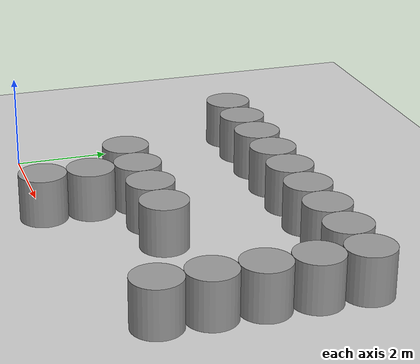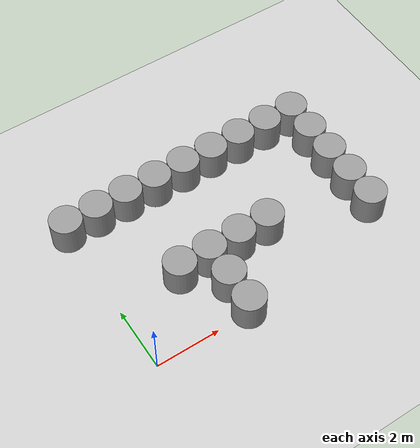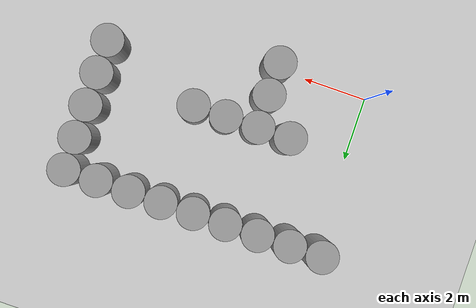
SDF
<sdf version="1.7">
 <world name="default">
  <model name="ground_plane">
   <static>1</static>
   <link name="link">
    <collision name="collision">
     <geometry><plane><normal>0 0 1</normal><size>100 100</size></plane></geometry>
     <surface>
      <contact><collide_bitmask>65535</collide_bitmask></contact>
      <friction><ode><mu>100</mu><mu2>50</mu2></ode></friction>
     </surface>
    </collision>
    <visual name="visual">
     <cast_shadows>0</cast_shadows>
     <geometry><plane><normal>0 0 1</normal><size>100 100</size></plane></geometry>
     <material>
      <script><uri>file://media/materials/scripts/gazebo.material</uri><name>Gazebo/Grey</name></script>
     </material>
    </visual>
   </link>
  </model>
  <model name="cylinder_1m_clone">
   <model name="cylinder_1m">
    <link name="link_0">
     <inertial>
      <mass>1</mass>
      <inertia>
       <ixx>0.166667</ixx>
       <ixy>0</ixy>
       <ixz>0</ixz>
       <iyy>0.166667</iyy>
       <iyz>0</iyz>
       <izz>0.166667</izz>
      </inertia>
     </inertial>
     <pose>0 0 -0 1.5708 -0 0</pose>
     <visual name="visual">
      <geometry>
       <mesh>
        <uri>/home/leesirius/workbench_ws/src/tb3_custom_worlds/custom_models/cylinder_1m.obj</uri>
        <scale>1 1 1</scale>
       </mesh>
      </geometry>
      <material>
       <lighting>1</lighting>
       <script><uri>file://media/materials/scripts/gazebo.material</uri><name>Gazebo/Grey</name></script>
       <shader type="pixel"/>
      </material>
     </visual>
     <collision name="collision">
      <geometry>
       <mesh>
        <uri>/home/leesirius/workbench_ws/src/tb3_custom_worlds/custom_models/cylinder_1m.obj</uri>
        <scale>1 1 1</scale>
       </mesh>
      </geometry>
      <surface>
       <friction>
        <ode><mu>1</mu><mu2>1</mu2><fdir1>0 0 0</fdir1><slip1>0</slip1><slip2>0</slip2></ode>
        <torsional>
         <coefficient>1</coefficient>
         <patch_radius>0</patch_radius>
         <surface_radius>0</surface_radius>
         <use_patch_radius>1</use_patch_radius>
         <ode><slip>0</slip></ode>
        </torsional>
       </friction>
       <bounce><restitution_coefficient>0</restitution_coefficient><threshold>1e+06</threshold></bounce>
       <contact>
        <collide_without_contact>0</collide_without_contact>
        <collide_without_contact_bitmask>1</collide_without_contact_bitmask>
        <collide_bitmask>1</collide_bitmask>
        <ode>
         <soft_cfm>0</soft_cfm>
         <soft_erp>0.2</soft_erp>
         <kp>1e+13</kp>
         <kd>1</kd>
         <max_vel>0.01</max_vel>
         <min_depth>0</min_depth>
        </ode>
        <bullet>
         <split_impulse>1</split_impulse>
         <split_impulse_penetration_threshold>-0.01</split_impulse_penetration_threshold>
         <soft_cfm>0</soft_cfm>
         <soft_erp>0.2</soft_erp>
         <kp>1e+13</kp>
         <kd>1</kd>
        </bullet>
       </contact>
      </surface>
     </collision>
    </link>
    <static>0</static>
    <pose>0 0 4e-06 0 -0 0</pose>
   </model>
   <static>1</static>
   <pose>1.00002 5 0.499996 -4e-06 -2e-06 0.000202</pose>
  </model>
  <model name="cylinder_1m_2_clone_2">
   <model name="cylinder_1m">
    <link name="link_0">
     <inertial>
      <mass>1</mass>
      <inertia>
       <ixx>0.166667</ixx>
       <ixy>0</ixy>
       <ixz>0</ixz>
       <iyy>0.166667</iyy>
       <iyz>0</iyz>
       <izz>0.166667</izz>
      </inertia>
     </inertial>
     <pose>0 0 -0 1.5708 -0 0</pose>
     <visual name="visual">
      <geometry>
       <mesh>
        <uri>/home/leesirius/workbench_ws/src/tb3_custom_worlds/custom_models/cylinder_1m.obj</uri>
        <scale>1 1 1</scale>
       </mesh>
      </geometry>
      <material>
       <lighting>1</lighting>
       <script><uri>file://media/materials/scripts/gazebo.material</uri><name>Gazebo/Grey</name></script>
       <shader type="pixel"/>
      </material>
     </visual>
     <collision name="collision">
      <geometry>
       <mesh>
        <uri>/home/leesirius/workbench_ws/src/tb3_custom_worlds/custom_models/cylinder_1m.obj</uri>
        <scale>1 1 1</scale>
       </mesh>
      </geometry>
      <surface>
       <friction>
        <ode><mu>1</mu><mu2>1</mu2><fdir1>0 0 0</fdir1><slip1>0</slip1><slip2>0</slip2></ode>
        <torsional>
         <coefficient>1</coefficient>
         <patch_radius>0</patch_radius>
         <surface_radius>0</surface_radius>
         <use_patch_radius>1</use_patch_radius>
         <ode><slip>0</slip></ode>
        </torsional>
       </friction>
       <bounce><restitution_coefficient>0</restitution_coefficient><threshold>1e+06</threshold></bounce>
       <contact>
        <collide_without_contact>0</collide_without_contact>
        <collide_without_contact_bitmask>1</collide_without_contact_bitmask>
        <collide_bitmask>1</collide_bitmask>
        <ode>
         <soft_cfm>0</soft_cfm>
         <soft_erp>0.2</soft_erp>
         <kp>1e+13</kp>
         <kd>1</kd>
         <max_vel>0.01</max_vel>
         <min_depth>0</min_depth>
        </ode>
        <bullet>
         <split_impulse>1</split_impulse>
         <split_impulse_penetration_threshold>-0.01</split_impulse_penetration_threshold>
         <soft_cfm>0</soft_cfm>
         <soft_erp>0.2</soft_erp>
         <kp>1e+13</kp>
         <kd>1</kd>
        </bullet>
       </contact>
      </surface>
     </collision>
    </link>
    <static>0</static>
    <pose>0 0 4e-06 0 -0 0</pose>
   </model>
   <static>1</static>
   <pose>3.4e-05 4.99999 0.499996 -5e-06 -3e-06 0.000138</pose>
  </model>
  <model name="cylinder_1m_2_clone_23">
   <model name="cylinder_1m">
    <link name="link_0">
     <inertial>
      <mass>1</mass>
      <inertia>
       <ixx>0.166667</ixx>
       <ixy>0</ixy>
       <ixz>0</ixz>
       <iyy>0.166667</iyy>
       <iyz>0</iyz>
       <izz>0.166667</izz>
      </inertia>
     </inertial>
     <pose>0 0 -0 1.5708 -0 0</pose>
     <visual name="visual">
      <geometry>
       <mesh>
        <uri>/home/leesirius/workbench_ws/src/tb3_custom_worlds/custom_models/cylinder_1m.obj</uri>
        <scale>1 1 1</scale>
       </mesh>
      </geometry>
      <material>
       <lighting>1</lighting>
       <script><uri>file://media/materials/scripts/gazebo.material</uri><name>Gazebo/Grey</name></script>
       <shader type="pixel"/>
      </material>
     </visual>
     <collision name="collision">
      <geometry>
       <mesh>
        <uri>/home/leesirius/workbench_ws/src/tb3_custom_worlds/custom_models/cylinder_1m.obj</uri>
        <scale>1 1 1</scale>
       </mesh>
      </geometry>
      <surface>
       <friction>
        <ode><mu>1</mu><mu2>1</mu2><fdir1>0 0 0</fdir1><slip1>0</slip1><slip2>0</slip2></ode>
        <torsional>
         <coefficient>1</coefficient>
         <patch_radius>0</patch_radius>
         <surface_radius>0</surface_radius>
         <use_patch_radius>1</use_patch_radius>
         <ode><slip>0</slip></ode>
        </torsional>
       </friction>
       <bounce><restitution_coefficient>0</restitution_coefficient><threshold>1e+06</threshold></bounce>
       <contact>
        <collide_without_contact>0</collide_without_contact>
        <collide_without_contact_bitmask>1</collide_without_contact_bitmask>
        <collide_bitmask>1</collide_bitmask>
        <ode>
         <soft_cfm>0</soft_cfm>
         <soft_erp>0.2</soft_erp>
         <kp>1e+13</kp>
         <kd>1</kd>
         <max_vel>0.01</max_vel>
         <min_depth>0</min_depth>
        </ode>
        <bullet>
         <split_impulse>1</split_impulse>
         <split_impulse_penetration_threshold>-0.01</split_impulse_penetration_threshold>
         <soft_cfm>0</soft_cfm>
         <soft_erp>0.2</soft_erp>
         <kp>1e+13</kp>
         <kd>1</kd>
        </bullet>
       </contact>
      </surface>
     </collision>
    </link>
    <static>0</static>
    <pose>0 0 4e-06 0 -0 0</pose>
   </model>
   <static>1</static>
   <pose>3.00002 -1.1e-05 0.499996 -4e-06 -2e-06 0.000208</pose>
  </model>
  <model name="cylinder_1m_2_clone_24">
   <model name="cylinder_1m">
    <link name="link_0">
     <inertial>
      <mass>1</mass>
      <inertia>
       <ixx>0.166667</ixx>
       <ixy>0</ixy>
       <ixz>0</ixz>
       <iyy>0.166667</iyy>
       <iyz>0</iyz>
       <izz>0.166667</izz>
      </inertia>
     </inertial>
     <pose>0 0 -0 1.5708 -0 0</pose>
     <visual name="visual">
      <geometry>
       <mesh>
        <uri>/home/leesirius/workbench_ws/src/tb3_custom_worlds/custom_models/cylinder_1m.obj</uri>
        <scale>1 1 1</scale>
       </mesh>
      </geometry>
      <material>
       <lighting>1</lighting>
       <script><uri>file://media/materials/scripts/gazebo.material</uri><name>Gazebo/Grey</name></script>
       <shader type="pixel"/>
      </material>
     </visual>
     <collision name="collision">
      <geometry>
       <mesh>
        <uri>/home/leesirius/workbench_ws/src/tb3_custom_worlds/custom_models/cylinder_1m.obj</uri>
        <scale>1 1 1</scale>
       </mesh>
      </geometry>
      <surface>
       <friction>
        <ode><mu>1</mu><mu2>1</mu2><fdir1>0 0 0</fdir1><slip1>0</slip1><slip2>0</slip2></ode>
        <torsional>
         <coefficient>1</coefficient>
         <patch_radius>0</patch_radius>
         <surface_radius>0</surface_radius>
         <use_patch_radius>1</use_patch_radius>
         <ode><slip>0</slip></ode>
        </torsional>
       </friction>
       <bounce><restitution_coefficient>0</restitution_coefficient><threshold>1e+06</threshold></bounce>
       <contact>
        <collide_without_contact>0</collide_without_contact>
        <collide_without_contact_bitmask>1</collide_without_contact_bitmask>
        <collide_bitmask>1</collide_bitmask>
        <ode>
         <soft_cfm>0</soft_cfm>
         <soft_erp>0.2</soft_erp>
         <kp>1e+13</kp>
         <kd>1</kd>
         <max_vel>0.01</max_vel>
         <min_depth>0</min_depth>
        </ode>
        <bullet>
         <split_impulse>1</split_impulse>
         <split_impulse_penetration_threshold>-0.01</split_impulse_penetration_threshold>
         <soft_cfm>0</soft_cfm>
         <soft_erp>0.2</soft_erp>
         <kp>1e+13</kp>
         <kd>1</kd>
        </bullet>
       </contact>
      </surface>
     </collision>
    </link>
    <static>0</static>
    <pose>0 0 4e-06 0 -0 0</pose>
   </model>
   <static>1</static>
   <pose>3.00002 0.999985 0.499996 -4e-06 -0 0.000211</pose>
  </model>
  <model name="cylinder_1m_2_clone_26">
   <model name="cylinder_1m">
    <link name="link_0">
     <inertial>
      <mass>1</mass>
      <inertia>
       <ixx>0.166667</ixx>
       <ixy>0</ixy>
       <ixz>0</ixz>
       <iyy>0.166667</iyy>
       <iyz>0</iyz>
       <izz>0.166667</izz>
      </inertia>
     </inertial>
     <pose>0 0 -0 1.5708 -0 0</pose>
     <visual name="visual">
      <geometry>
       <mesh>
        <uri>/home/leesirius/workbench_ws/src/tb3_custom_worlds/custom_models/cylinder_1m.obj</uri>
        <scale>1 1 1</scale>
       </mesh>
      </geometry>
      <material>
       <lighting>1</lighting>
       <script><uri>file://media/materials/scripts/gazebo.material</uri><name>Gazebo/Grey</name></script>
       <shader type="pixel"/>
      </material>
     </visual>
     <collision name="collision">
      <geometry>
       <mesh>
        <uri>/home/leesirius/workbench_ws/src/tb3_custom_worlds/custom_models/cylinder_1m.obj</uri>
        <scale>1 1 1</scale>
       </mesh>
      </geometry>
      <surface>
       <friction>
        <ode><mu>1</mu><mu2>1</mu2><fdir1>0 0 0</fdir1><slip1>0</slip1><slip2>0</slip2></ode>
        <torsional>
         <coefficient>1</coefficient>
         <patch_radius>0</patch_radius>
         <surface_radius>0</surface_radius>
         <use_patch_radius>1</use_patch_radius>
         <ode><slip>0</slip></ode>
        </torsional>
       </friction>
       <bounce><restitution_coefficient>0</restitution_coefficient><threshold>1e+06</threshold></bounce>
       <contact>
        <collide_without_contact>0</collide_without_contact>
        <collide_without_contact_bitmask>1</collide_without_contact_bitmask>
        <collide_bitmask>1</collide_bitmask>
        <ode>
         <soft_cfm>0</soft_cfm>
         <soft_erp>0.2</soft_erp>
         <kp>1e+13</kp>
         <kd>1</kd>
         <max_vel>0.01</max_vel>
         <min_depth>0</min_depth>
        </ode>
        <bullet>
         <split_impulse>1</split_impulse>
         <split_impulse_penetration_threshold>-0.01</split_impulse_penetration_threshold>
         <soft_cfm>0</soft_cfm>
         <soft_erp>0.2</soft_erp>
         <kp>1e+13</kp>
         <kd>1</kd>
        </bullet>
       </contact>
      </surface>
     </collision>
    </link>
    <static>0</static>
    <pose>0 0 4e-06 0 -0 0</pose>
   </model>
   <static>1</static>
   <pose>2.00002 4.99999 0.499995 -5e-06 -2e-06 0.00014</pose>
  </model>
  <model name="cylinder_1m_2_clone_27">
   <model name="cylinder_1m">
    <link name="link_0">
     <inertial>
      <mass>1</mass>
      <inertia>
       <ixx>0.166667</ixx>
       <ixy>0</ixy>
       <ixz>0</ixz>
       <iyy>0.166667</iyy>
       <iyz>0</iyz>
       <izz>0.166667</izz>
      </inertia>
     </inertial>
     <pose>0 0 -0 1.5708 -0 0</pose>
     <visual name="visual">
      <geometry>
       <mesh>
        <uri>/home/leesirius/workbench_ws/src/tb3_custom_worlds/custom_models/cylinder_1m.obj</uri>
        <scale>1 1 1</scale>
       </mesh>
      </geometry>
      <material>
       <lighting>1</lighting>
       <script><uri>file://media/materials/scripts/gazebo.material</uri><name>Gazebo/Grey</name></script>
       <shader type="pixel"/>
      </material>
     </visual>
     <collision name="collision">
      <geometry>
       <mesh>
        <uri>/home/leesirius/workbench_ws/src/tb3_custom_worlds/custom_models/cylinder_1m.obj</uri>
        <scale>1 1 1</scale>
       </mesh>
      </geometry>
      <surface>
       <friction>
        <ode><mu>1</mu><mu2>1</mu2><fdir1>0 0 0</fdir1><slip1>0</slip1><slip2>0</slip2></ode>
        <torsional>
         <coefficient>1</coefficient>
         <patch_radius>0</patch_radius>
         <surface_radius>0</surface_radius>
         <use_patch_radius>1</use_patch_radius>
         <ode><slip>0</slip></ode>
        </torsional>
       </friction>
       <bounce><restitution_coefficient>0</restitution_coefficient><threshold>1e+06</threshold></bounce>
       <contact>
        <collide_without_contact>0</collide_without_contact>
        <collide_without_contact_bitmask>1</collide_without_contact_bitmask>
        <collide_bitmask>1</collide_bitmask>
        <ode>
         <soft_cfm>0</soft_cfm>
         <soft_erp>0.2</soft_erp>
         <kp>1e+13</kp>
         <kd>1</kd>
         <max_vel>0.01</max_vel>
         <min_depth>0</min_depth>
        </ode>
        <bullet>
         <split_impulse>1</split_impulse>
         <split_impulse_penetration_threshold>-0.01</split_impulse_penetration_threshold>
         <soft_cfm>0</soft_cfm>
         <soft_erp>0.2</soft_erp>
         <kp>1e+13</kp>
         <kd>1</kd>
        </bullet>
       </contact>
      </surface>
     </collision>
    </link>
    <static>0</static>
    <pose>0 0 4e-06 0 -0 0</pose>
   </model>
   <static>1</static>
   <pose>3.00002 4.99999 0.499995 -5e-06 -2e-06 0.00014</pose>
  </model>
  <model name="cylinder_1m_2_clone_28">
   <model name="cylinder_1m">
    <link name="link_0">
     <inertial>
      <mass>1</mass>
      <inertia>
       <ixx>0.166667</ixx>
       <ixy>0</ixy>
       <ixz>0</ixz>
       <iyy>0.166667</iyy>
       <iyz>0</iyz>
       <izz>0.166667</izz>
      </inertia>
     </inertial>
     <pose>0 0 -0 1.5708 -0 0</pose>
     <visual name="visual">
      <geometry>
       <mesh>
        <uri>/home/leesirius/workbench_ws/src/tb3_custom_worlds/custom_models/cylinder_1m.obj</uri>
        <scale>1 1 1</scale>
       </mesh>
      </geometry>
      <material>
       <lighting>1</lighting>
       <script><uri>file://media/materials/scripts/gazebo.material</uri><name>Gazebo/Grey</name></script>
       <shader type="pixel"/>
      </material>
     </visual>
     <collision name="collision">
      <geometry>
       <mesh>
        <uri>/home/leesirius/workbench_ws/src/tb3_custom_worlds/custom_models/cylinder_1m.obj</uri>
        <scale>1 1 1</scale>
       </mesh>
      </geometry>
      <surface>
       <friction>
        <ode><mu>1</mu><mu2>1</mu2><fdir1>0 0 0</fdir1><slip1>0</slip1><slip2>0</slip2></ode>
        <torsional>
         <coefficient>1</coefficient>
         <patch_radius>0</patch_radius>
         <surface_radius>0</surface_radius>
         <use_patch_radius>1</use_patch_radius>
         <ode><slip>0</slip></ode>
        </torsional>
       </friction>
       <bounce><restitution_coefficient>0</restitution_coefficient><threshold>1e+06</threshold></bounce>
       <contact>
        <collide_without_contact>0</collide_without_contact>
        <collide_without_contact_bitmask>1</collide_without_contact_bitmask>
        <collide_bitmask>1</collide_bitmask>
        <ode>
         <soft_cfm>0</soft_cfm>
         <soft_erp>0.2</soft_erp>
         <kp>1e+13</kp>
         <kd>1</kd>
         <max_vel>0.01</max_vel>
         <min_depth>0</min_depth>
        </ode>
        <bullet>
         <split_impulse>1</split_impulse>
         <split_impulse_penetration_threshold>-0.01</split_impulse_penetration_threshold>
         <soft_cfm>0</soft_cfm>
         <soft_erp>0.2</soft_erp>
         <kp>1e+13</kp>
         <kd>1</kd>
        </bullet>
       </contact>
      </surface>
     </collision>
    </link>
    <static>0</static>
    <pose>0 0 4e-06 0 -0 0</pose>
   </model>
   <static>1</static>
   <pose>4.00002 4.99999 0.499995 -5e-06 -2e-06 0.00014</pose>
  </model>
  <model name="cylinder_1m_2_clone_29">
   <model name="cylinder_1m">
    <link name="link_0">
     <inertial>
      <mass>1</mass>
      <inertia>
       <ixx>0.166667</ixx>
       <ixy>0</ixy>
       <ixz>0</ixz>
       <iyy>0.166667</iyy>
       <iyz>0</iyz>
       <izz>0.166667</izz>
      </inertia>
     </inertial>
     <pose>0 0 -0 1.5708 -0 0</pose>
     <visual name="visual">
      <geometry>
       <mesh>
        <uri>/home/leesirius/workbench_ws/src/tb3_custom_worlds/custom_models/cylinder_1m.obj</uri>
        <scale>1 1 1</scale>
       </mesh>
      </geometry>
      <material>
       <lighting>1</lighting>
       <script><uri>file://media/materials/scripts/gazebo.material</uri><name>Gazebo/Grey</name></script>
       <shader type="pixel"/>
      </material>
     </visual>
     <collision name="collision">
      <geometry>
       <mesh>
        <uri>/home/leesirius/workbench_ws/src/tb3_custom_worlds/custom_models/cylinder_1m.obj</uri>
        <scale>1 1 1</scale>
       </mesh>
      </geometry>
      <surface>
       <friction>
        <ode><mu>1</mu><mu2>1</mu2><fdir1>0 0 0</fdir1><slip1>0</slip1><slip2>0</slip2></ode>
        <torsional>
         <coefficient>1</coefficient>
         <patch_radius>0</patch_radius>
         <surface_radius>0</surface_radius>
         <use_patch_radius>1</use_patch_radius>
         <ode><slip>0</slip></ode>
        </torsional>
       </friction>
       <bounce><restitution_coefficient>0</restitution_coefficient><threshold>1e+06</threshold></bounce>
       <contact>
        <collide_without_contact>0</collide_without_contact>
        <collide_without_contact_bitmask>1</collide_without_contact_bitmask>
        <collide_bitmask>1</collide_bitmask>
        <ode>
         <soft_cfm>0</soft_cfm>
         <soft_erp>0.2</soft_erp>
         <kp>1e+13</kp>
         <kd>1</kd>
         <max_vel>0.01</max_vel>
         <min_depth>0</min_depth>
        </ode>
        <bullet>
         <split_impulse>1</split_impulse>
         <split_impulse_penetration_threshold>-0.01</split_impulse_penetration_threshold>
         <soft_cfm>0</soft_cfm>
         <soft_erp>0.2</soft_erp>
         <kp>1e+13</kp>
         <kd>1</kd>
        </bullet>
       </contact>
      </surface>
     </collision>
    </link>
    <static>0</static>
    <pose>0 0 4e-06 0 -0 0</pose>
   </model>
   <static>1</static>
   <pose>5.00002 4.99999 0.499995 -5e-06 -2e-06 0.00014</pose>
  </model>
  <model name="cylinder_1m_2_clone_30">
   <model name="cylinder_1m">
    <link name="link_0">
     <inertial>
      <mass>1</mass>
      <inertia>
       <ixx>0.166667</ixx>
       <ixy>0</ixy>
       <ixz>0</ixz>
       <iyy>0.166667</iyy>
       <iyz>0</iyz>
       <izz>0.166667</izz>
      </inertia>
     </inertial>
     <pose>0 0 -0 1.5708 -0 0</pose>
     <visual name="visual">
      <geometry>
       <mesh>
        <uri>/home/leesirius/workbench_ws/src/tb3_custom_worlds/custom_models/cylinder_1m.obj</uri>
        <scale>1 1 1</scale>
       </mesh>
      </geometry>
      <material>
       <lighting>1</lighting>
       <script><uri>file://media/materials/scripts/gazebo.material</uri><name>Gazebo/Grey</name></script>
       <shader type="pixel"/>
      </material>
     </visual>
     <collision name="collision">
      <geometry>
       <mesh>
        <uri>/home/leesirius/workbench_ws/src/tb3_custom_worlds/custom_models/cylinder_1m.obj</uri>
        <scale>1 1 1</scale>
       </mesh>
      </geometry>
      <surface>
       <friction>
        <ode><mu>1</mu><mu2>1</mu2><fdir1>0 0 0</fdir1><slip1>0</slip1><slip2>0</slip2></ode>
        <torsional>
         <coefficient>1</coefficient>
         <patch_radius>0</patch_radius>
         <surface_radius>0</surface_radius>
         <use_patch_radius>1</use_patch_radius>
         <ode><slip>0</slip></ode>
        </torsional>
       </friction>
       <bounce><restitution_coefficient>0</restitution_coefficient><threshold>1e+06</threshold></bounce>
       <contact>
        <collide_without_contact>0</collide_without_contact>
        <collide_without_contact_bitmask>1</collide_without_contact_bitmask>
        <collide_bitmask>1</collide_bitmask>
        <ode>
         <soft_cfm>0</soft_cfm>
         <soft_erp>0.2</soft_erp>
         <kp>1e+13</kp>
         <kd>1</kd>
         <max_vel>0.01</max_vel>
         <min_depth>0</min_depth>
        </ode>
        <bullet>
         <split_impulse>1</split_impulse>
         <split_impulse_penetration_threshold>-0.01</split_impulse_penetration_threshold>
         <soft_cfm>0</soft_cfm>
         <soft_erp>0.2</soft_erp>
         <kp>1e+13</kp>
         <kd>1</kd>
        </bullet>
       </contact>
      </surface>
     </collision>
    </link>
    <static>0</static>
    <pose>0 0 4e-06 0 -0 0</pose>
   </model>
   <static>1</static>
   <pose>3.00002 1.99999 0.499995 -5e-06 -2e-06 0.00014</pose>
  </model>
  <model name="cylinder_1m_2_clone_31">
   <model name="cylinder_1m">
    <link name="link_0">
     <inertial>
      <mass>1</mass>
      <inertia>
       <ixx>0.166667</ixx>
       <ixy>0</ixy>
       <ixz>0</ixz>
       <iyy>0.166667</iyy>
       <iyz>0</iyz>
       <izz>0.166667</izz>
      </inertia>
     </inertial>
     <pose>0 0 -0 1.5708 -0 0</pose>
     <visual name="visual">
      <geometry>
       <mesh>
        <uri>/home/leesirius/workbench_ws/src/tb3_custom_worlds/custom_models/cylinder_1m.obj</uri>
        <scale>1 1 1</scale>
       </mesh>
      </geometry>
      <material>
       <lighting>1</lighting>
       <script><uri>file://media/materials/scripts/gazebo.material</uri><name>Gazebo/Grey</name></script>
       <shader type="pixel"/>
      </material>
     </visual>
     <collision name="collision">
      <geometry>
       <mesh>
        <uri>/home/leesirius/workbench_ws/src/tb3_custom_worlds/custom_models/cylinder_1m.obj</uri>
        <scale>1 1 1</scale>
       </mesh>
      </geometry>
      <surface>
       <friction>
        <ode><mu>1</mu><mu2>1</mu2><fdir1>0 0 0</fdir1><slip1>0</slip1><slip2>0</slip2></ode>
        <torsional>
         <coefficient>1</coefficient>
         <patch_radius>0</patch_radius>
         <surface_radius>0</surface_radius>
         <use_patch_radius>1</use_patch_radius>
         <ode><slip>0</slip></ode>
        </torsional>
       </friction>
       <bounce><restitution_coefficient>0</restitution_coefficient><threshold>1e+06</threshold></bounce>
       <contact>
        <collide_without_contact>0</collide_without_contact>
        <collide_without_contact_bitmask>1</collide_without_contact_bitmask>
        <collide_bitmask>1</collide_bitmask>
        <ode>
         <soft_cfm>0</soft_cfm>
         <soft_erp>0.2</soft_erp>
         <kp>1e+13</kp>
         <kd>1</kd>
         <max_vel>0.01</max_vel>
         <min_depth>0</min_depth>
        </ode>
        <bullet>
         <split_impulse>1</split_impulse>
         <split_impulse_penetration_threshold>-0.01</split_impulse_penetration_threshold>
         <soft_cfm>0</soft_cfm>
         <soft_erp>0.2</soft_erp>
         <kp>1e+13</kp>
         <kd>1</kd>
        </bullet>
       </contact>
      </surface>
     </collision>
    </link>
    <static>0</static>
    <pose>0 0 4e-06 0 -0 0</pose>
   </model>
   <static>1</static>
   <pose>4.00002 1.99999 0.499995 -5e-06 -2e-06 0.00014</pose>
  </model>
  <model name="cylinder_1m_2_clone_32">
   <model name="cylinder_1m">
    <link name="link_0">
     <inertial>
      <mass>1</mass>
      <inertia>
       <ixx>0.166667</ixx>
       <ixy>0</ixy>
       <ixz>0</ixz>
       <iyy>0.166667</iyy>
       <iyz>0</iyz>
       <izz>0.166667</izz>
      </inertia>
     </inertial>
     <pose>0 0 -0 1.5708 -0 0</pose>
     <visual name="visual">
      <geometry>
       <mesh>
        <uri>/home/leesirius/workbench_ws/src/tb3_custom_worlds/custom_models/cylinder_1m.obj</uri>
        <scale>1 1 1</scale>
       </mesh>
      </geometry>
      <material>
       <lighting>1</lighting>
       <script><uri>file://media/materials/scripts/gazebo.material</uri><name>Gazebo/Grey</name></script>
       <shader type="pixel"/>
      </material>
     </visual>
     <collision name="collision">
      <geometry>
       <mesh>
        <uri>/home/leesirius/workbench_ws/src/tb3_custom_worlds/custom_models/cylinder_1m.obj</uri>
        <scale>1 1 1</scale>
       </mesh>
      </geometry>
      <surface>
       <friction>
        <ode><mu>1</mu><mu2>1</mu2><fdir1>0 0 0</fdir1><slip1>0</slip1><slip2>0</slip2></ode>
        <torsional>
         <coefficient>1</coefficient>
         <patch_radius>0</patch_radius>
         <surface_radius>0</surface_radius>
         <use_patch_radius>1</use_patch_radius>
         <ode><slip>0</slip></ode>
        </torsional>
       </friction>
       <bounce><restitution_coefficient>0</restitution_coefficient><threshold>1e+06</threshold></bounce>
       <contact>
        <collide_without_contact>0</collide_without_contact>
        <collide_without_contact_bitmask>1</collide_without_contact_bitmask>
        <collide_bitmask>1</collide_bitmask>
        <ode>
         <soft_cfm>0</soft_cfm>
         <soft_erp>0.2</soft_erp>
         <kp>1e+13</kp>
         <kd>1</kd>
         <max_vel>0.01</max_vel>
         <min_depth>0</min_depth>
        </ode>
        <bullet>
         <split_impulse>1</split_impulse>
         <split_impulse_penetration_threshold>-0.01</split_impulse_penetration_threshold>
         <soft_cfm>0</soft_cfm>
         <soft_erp>0.2</soft_erp>
         <kp>1e+13</kp>
         <kd>1</kd>
        </bullet>
       </contact>
      </surface>
     </collision>
    </link>
    <static>0</static>
    <pose>0 0 4e-06 0 -0 0</pose>
   </model>
   <static>1</static>
   <pose>5.00002 1.99999 0.499995 -5e-06 -2e-06 0.00014</pose>
  </model>
  <model name="cylinder_1m_2_clone_33">
   <model name="cylinder_1m">
    <link name="link_0">
     <inertial>
      <mass>1</mass>
      <inertia>
       <ixx>0.166667</ixx>
       <ixy>0</ixy>
       <ixz>0</ixz>
       <iyy>0.166667</iyy>
       <iyz>0</iyz>
       <izz>0.166667</izz>
      </inertia>
     </inertial>
     <pose>0 0 -0 1.5708 -0 0</pose>
     <visual name="visual">
      <geometry>
       <mesh>
        <uri>/home/leesirius/workbench_ws/src/tb3_custom_worlds/custom_models/cylinder_1m.obj</uri>
        <scale>1 1 1</scale>
       </mesh>
      </geometry>
      <material>
       <lighting>1</lighting>
       <script><uri>file://media/materials/scripts/gazebo.material</uri><name>Gazebo/Grey</name></script>
       <shader type="pixel"/>
      </material>
     </visual>
     <collision name="collision">
      <geometry>
       <mesh>
        <uri>/home/leesirius/workbench_ws/src/tb3_custom_worlds/custom_models/cylinder_1m.obj</uri>
        <scale>1 1 1</scale>
       </mesh>
      </geometry>
      <surface>
       <friction>
        <ode><mu>1</mu><mu2>1</mu2><fdir1>0 0 0</fdir1><slip1>0</slip1><slip2>0</slip2></ode>
        <torsional>
         <coefficient>1</coefficient>
         <patch_radius>0</patch_radius>
         <surface_radius>0</surface_radius>
         <use_patch_radius>1</use_patch_radius>
         <ode><slip>0</slip></ode>
        </torsional>
       </friction>
       <bounce><restitution_coefficient>0</restitution_coefficient><threshold>1e+06</threshold></bounce>
       <contact>
        <collide_without_contact>0</collide_without_contact>
        <collide_without_contact_bitmask>1</collide_without_contact_bitmask>
        <collide_bitmask>1</collide_bitmask>
        <ode>
         <soft_cfm>0</soft_cfm>
         <soft_erp>0.2</soft_erp>
         <kp>1e+13</kp>
         <kd>1</kd>
         <max_vel>0.01</max_vel>
         <min_depth>0</min_depth>
        </ode>
        <bullet>
         <split_impulse>1</split_impulse>
         <split_impulse_penetration_threshold>-0.01</split_impulse_penetration_threshold>
         <soft_cfm>0</soft_cfm>
         <soft_erp>0.2</soft_erp>
         <kp>1e+13</kp>
         <kd>1</kd>
        </bullet>
       </contact>
      </surface>
     </collision>
    </link>
    <static>0</static>
    <pose>0 0 4e-06 0 -0 0</pose>
   </model>
   <static>1</static>
   <pose>6.00002 4.99999 0.499995 -5e-06 -2e-06 0.00014</pose>
  </model>
  <model name="cylinder_1m_2_clone_25">
   <model name="cylinder_1m">
    <link name="link_0">
     <inertial>
      <mass>1</mass>
      <inertia>
       <ixx>0.166667</ixx>
       <ixy>0</ixy>
       <ixz>0</ixz>
       <iyy>0.166667</iyy>
       <iyz>0</iyz>
       <izz>0.166667</izz>
      </inertia>
     </inertial>
     <pose>0 0 -0 1.5708 -0 0</pose>
     <visual name="visual">
      <geometry>
       <mesh>
        <uri>/home/leesirius/workbench_ws/src/tb3_custom_worlds/custom_models/cylinder_1m.obj</uri>
        <scale>1 1 1</scale>
       </mesh>
      </geometry>
      <material>
       <lighting>1</lighting>
       <script><uri>file://media/materials/scripts/gazebo.material</uri><name>Gazebo/Grey</name></script>
       <shader type="pixel"/>
      </material>
     </visual>
     <collision name="collision">
      <geometry>
       <mesh>
        <uri>/home/leesirius/workbench_ws/src/tb3_custom_worlds/custom_models/cylinder_1m.obj</uri>
        <scale>1 1 1</scale>
       </mesh>
      </geometry>
      <surface>
       <friction>
        <ode><mu>1</mu><mu2>1</mu2><fdir1>0 0 0</fdir1><slip1>0</slip1><slip2>0</slip2></ode>
        <torsional>
         <coefficient>1</coefficient>
         <patch_radius>0</patch_radius>
         <surface_radius>0</surface_radius>
         <use_patch_radius>1</use_patch_radius>
         <ode><slip>0</slip></ode>
        </torsional>
       </friction>
       <bounce><restitution_coefficient>0</restitution_coefficient><threshold>1e+06</threshold></bounce>
       <contact>
        <collide_without_contact>0</collide_without_contact>
        <collide_without_contact_bitmask>1</collide_without_contact_bitmask>
        <collide_bitmask>1</collide_bitmask>
        <ode>
         <soft_cfm>0</soft_cfm>
         <soft_erp>0.2</soft_erp>
         <kp>1e+13</kp>
         <kd>1</kd>
         <max_vel>0.01</max_vel>
         <min_depth>0</min_depth>
        </ode>
        <bullet>
         <split_impulse>1</split_impulse>
         <split_impulse_penetration_threshold>-0.01</split_impulse_penetration_threshold>
         <soft_cfm>0</soft_cfm>
         <soft_erp>0.2</soft_erp>
         <kp>1e+13</kp>
         <kd>1</kd>
        </bullet>
       </contact>
      </surface>
     </collision>
    </link>
    <static>0</static>
    <pose>0 0 4e-06 0 -0 0</pose>
   </model>
   <static>1</static>
   <pose>7.00002 4.99999 0.499995 -5e-06 -2e-06 0.00014</pose>
  </model>
  <model name="cylinder_1m_2_clone_34">
   <model name="cylinder_1m">
    <link name="link_0">
     <inertial>
      <mass>1</mass>
      <inertia>
       <ixx>0.166667</ixx>
       <ixy>0</ixy>
       <ixz>0</ixz>
       <iyy>0.166667</iyy>
       <iyz>0</iyz>
       <izz>0.166667</izz>
      </inertia>
     </inertial>
     <pose>0 0 -0 1.5708 -0 0</pose>
     <visual name="visual">
      <geometry>
       <mesh>
        <uri>/home/leesirius/workbench_ws/src/tb3_custom_worlds/custom_models/cylinder_1m.obj</uri>
        <scale>1 1 1</scale>
       </mesh>
      </geometry>
      <material>
       <lighting>1</lighting>
       <script><uri>file://media/materials/scripts/gazebo.material</uri><name>Gazebo/Grey</name></script>
       <shader type="pixel"/>
      </material>
     </visual>
     <collision name="collision">
      <geometry>
       <mesh>
        <uri>/home/leesirius/workbench_ws/src/tb3_custom_worlds/custom_models/cylinder_1m.obj</uri>
        <scale>1 1 1</scale>
       </mesh>
      </geometry>
      <surface>
       <friction>
        <ode><mu>1</mu><mu2>1</mu2><fdir1>0 0 0</fdir1><slip1>0</slip1><slip2>0</slip2></ode>
        <torsional>
         <coefficient>1</coefficient>
         <patch_radius>0</patch_radius>
         <surface_radius>0</surface_radius>
         <use_patch_radius>1</use_patch_radius>
         <ode><slip>0</slip></ode>
        </torsional>
       </friction>
       <bounce><restitution_coefficient>0</restitution_coefficient><threshold>1e+06</threshold></bounce>
       <contact>
        <collide_without_contact>0</collide_without_contact>
        <collide_without_contact_bitmask>1</collide_without_contact_bitmask>
        <collide_bitmask>1</collide_bitmask>
        <ode>
         <soft_cfm>0</soft_cfm>
         <soft_erp>0.2</soft_erp>
         <kp>1e+13</kp>
         <kd>1</kd>
         <max_vel>0.01</max_vel>
         <min_depth>0</min_depth>
        </ode>
        <bullet>
         <split_impulse>1</split_impulse>
         <split_impulse_penetration_threshold>-0.01</split_impulse_penetration_threshold>
         <soft_cfm>0</soft_cfm>
         <soft_erp>0.2</soft_erp>
         <kp>1e+13</kp>
         <kd>1</kd>
        </bullet>
       </contact>
      </surface>
     </collision>
    </link>
    <static>0</static>
    <pose>0 0 4e-06 0 -0 0</pose>
   </model>
   <static>1</static>
   <pose>8.00002 4.99999 0.499995 -5e-06 -2e-06 0.00014</pose>
  </model>
  <model name="cylinder_1m_2_clone_35">
   <model name="cylinder_1m">
    <link name="link_0">
     <inertial>
      <mass>1</mass>
      <inertia>
       <ixx>0.166667</ixx>
       <ixy>0</ixy>
       <ixz>0</ixz>
       <iyy>0.166667</iyy>
       <iyz>0</iyz>
       <izz>0.166667</izz>
      </inertia>
     </inertial>
     <pose>0 0 -0 1.5708 -0 0</pose>
     <visual name="visual">
      <geometry>
       <mesh>
        <uri>/home/leesirius/workbench_ws/src/tb3_custom_worlds/custom_models/cylinder_1m.obj</uri>
        <scale>1 1 1</scale>
       </mesh>
      </geometry>
      <material>
       <lighting>1</lighting>
       <script><uri>file://media/materials/scripts/gazebo.material</uri><name>Gazebo/Grey</name></script>
       <shader type="pixel"/>
      </material>
     </visual>
     <collision name="collision">
      <geometry>
       <mesh>
        <uri>/home/leesirius/workbench_ws/src/tb3_custom_worlds/custom_models/cylinder_1m.obj</uri>
        <scale>1 1 1</scale>
       </mesh>
      </geometry>
      <surface>
       <friction>
        <ode><mu>1</mu><mu2>1</mu2><fdir1>0 0 0</fdir1><slip1>0</slip1><slip2>0</slip2></ode>
        <torsional>
         <coefficient>1</coefficient>
         <patch_radius>0</patch_radius>
         <surface_radius>0</surface_radius>
         <use_patch_radius>1</use_patch_radius>
         <ode><slip>0</slip></ode>
        </torsional>
       </friction>
       <bounce><restitution_coefficient>0</restitution_coefficient><threshold>1e+06</threshold></bounce>
       <contact>
        <collide_without_contact>0</collide_without_contact>
        <collide_without_contact_bitmask>1</collide_without_contact_bitmask>
        <collide_bitmask>1</collide_bitmask>
        <ode>
         <soft_cfm>0</soft_cfm>
         <soft_erp>0.2</soft_erp>
         <kp>1e+13</kp>
         <kd>1</kd>
         <max_vel>0.01</max_vel>
         <min_depth>0</min_depth>
        </ode>
        <bullet>
         <split_impulse>1</split_impulse>
         <split_impulse_penetration_threshold>-0.01</split_impulse_penetration_threshold>
         <soft_cfm>0</soft_cfm>
         <soft_erp>0.2</soft_erp>
         <kp>1e+13</kp>
         <kd>1</kd>
        </bullet>
       </contact>
      </surface>
     </collision>
    </link>
    <static>0</static>
    <pose>0 0 4e-06 0 -0 0</pose>
   </model>
   <static>1</static>
   <pose>8.00002 3.99999 0.499995 -5e-06 -2e-06 0.00014</pose>
  </model>
  <model name="cylinder_1m_2_clone_36">
   <model name="cylinder_1m">
    <link name="link_0">
     <inertial>
      <mass>1</mass>
      <inertia>
       <ixx>0.166667</ixx>
       <ixy>0</ixy>
       <ixz>0</ixz>
       <iyy>0.166667</iyy>
       <iyz>0</iyz>
       <izz>0.166667</izz>
      </inertia>
     </inertial>
     <pose>0 0 -0 1.5708 -0 0</pose>
     <visual name="visual">
      <geometry>
       <mesh>
        <uri>/home/leesirius/workbench_ws/src/tb3_custom_worlds/custom_models/cylinder_1m.obj</uri>
        <scale>1 1 1</scale>
       </mesh>
      </geometry>
      <material>
       <lighting>1</lighting>
       <script><uri>file://media/materials/scripts/gazebo.material</uri><name>Gazebo/Grey</name></script>
       <shader type="pixel"/>
      </material>
     </visual>
     <collision name="collision">
      <geometry>
       <mesh>
        <uri>/home/leesirius/workbench_ws/src/tb3_custom_worlds/custom_models/cylinder_1m.obj</uri>
        <scale>1 1 1</scale>
       </mesh>
      </geometry>
      <surface>
       <friction>
        <ode><mu>1</mu><mu2>1</mu2><fdir1>0 0 0</fdir1><slip1>0</slip1><slip2>0</slip2></ode>
        <torsional>
         <coefficient>1</coefficient>
         <patch_radius>0</patch_radius>
         <surface_radius>0</surface_radius>
         <use_patch_radius>1</use_patch_radius>
         <ode><slip>0</slip></ode>
        </torsional>
       </friction>
       <bounce><restitution_coefficient>0</restitution_coefficient><threshold>1e+06</threshold></bounce>
       <contact>
        <collide_without_contact>0</collide_without_contact>
        <collide_without_contact_bitmask>1</collide_without_contact_bitmask>
        <collide_bitmask>1</collide_bitmask>
        <ode>
         <soft_cfm>0</soft_cfm>
         <soft_erp>0.2</soft_erp>
         <kp>1e+13</kp>
         <kd>1</kd>
         <max_vel>0.01</max_vel>
         <min_depth>0</min_depth>
        </ode>
        <bullet>
         <split_impulse>1</split_impulse>
         <split_impulse_penetration_threshold>-0.01</split_impulse_penetration_threshold>
         <soft_cfm>0</soft_cfm>
         <soft_erp>0.2</soft_erp>
         <kp>1e+13</kp>
         <kd>1</kd>
        </bullet>
       </contact>
      </surface>
     </collision>
    </link>
    <static>0</static>
    <pose>0 0 4e-06 0 -0 0</pose>
   </model>
   <static>1</static>
   <pose>8.00002 2.99999 0.499995 -5e-06 -2e-06 0.00014</pose>
  </model>
  <model name="cylinder_1m_2_clone_37">
   <model name="cylinder_1m">
    <link name="link_0">
     <inertial>
      <mass>1</mass>
      <inertia>
       <ixx>0.166667</ixx>
       <ixy>0</ixy>
       <ixz>0</ixz>
       <iyy>0.166667</iyy>
       <iyz>0</iyz>
       <izz>0.166667</izz>
      </inertia>
     </inertial>
     <pose>0 0 -0 1.5708 -0 0</pose>
     <visual name="visual">
      <geometry>
       <mesh>
        <uri>/home/leesirius/workbench_ws/src/tb3_custom_worlds/custom_models/cylinder_1m.obj</uri>
        <scale>1 1 1</scale>
       </mesh>
      </geometry>
      <material>
       <lighting>1</lighting>
       <script><uri>file://media/materials/scripts/gazebo.material</uri><name>Gazebo/Grey</name></script>
       <shader type="pixel"/>
      </material>
     </visual>
     <collision name="collision">
      <geometry>
       <mesh>
        <uri>/home/leesirius/workbench_ws/src/tb3_custom_worlds/custom_models/cylinder_1m.obj</uri>
        <scale>1 1 1</scale>
       </mesh>
      </geometry>
      <surface>
       <friction>
        <ode><mu>1</mu><mu2>1</mu2><fdir1>0 0 0</fdir1><slip1>0</slip1><slip2>0</slip2></ode>
        <torsional>
         <coefficient>1</coefficient>
         <patch_radius>0</patch_radius>
         <surface_radius>0</surface_radius>
         <use_patch_radius>1</use_patch_radius>
         <ode><slip>0</slip></ode>
        </torsional>
       </friction>
       <bounce><restitution_coefficient>0</restitution_coefficient><threshold>1e+06</threshold></bounce>
       <contact>
        <collide_without_contact>0</collide_without_contact>
        <collide_without_contact_bitmask>1</collide_without_contact_bitmask>
        <collide_bitmask>1</collide_bitmask>
        <ode>
         <soft_cfm>0</soft_cfm>
         <soft_erp>0.2</soft_erp>
         <kp>1e+13</kp>
         <kd>1</kd>
         <max_vel>0.01</max_vel>
         <min_depth>0</min_depth>
        </ode>
        <bullet>
         <split_impulse>1</split_impulse>
         <split_impulse_penetration_threshold>-0.01</split_impulse_penetration_threshold>
         <soft_cfm>0</soft_cfm>
         <soft_erp>0.2</soft_erp>
         <kp>1e+13</kp>
         <kd>1</kd>
        </bullet>
       </contact>
      </surface>
     </collision>
    </link>
    <static>0</static>
    <pose>0 0 4e-06 0 -0 0</pose>
   </model>
   <static>1</static>
   <pose>8.00002 1.99999 0.499995 -5e-06 -2e-06 0.00014</pose>
  </model>
  <model name="cylinder_1m_2_clone_45">
   <model name="cylinder_1m">
    <link name="link_0">
     <inertial>
      <mass>1</mass>
      <inertia>
       <ixx>0.166667</ixx>
       <ixy>0</ixy>
       <ixz>0</ixz>
       <iyy>0.166667</iyy>
       <iyz>0</iyz>
       <izz>0.166667</izz>
      </inertia>
     </inertial>
     <pose>0 0 -0 1.5708 -0 0</pose>
     <visual name="visual">
      <geometry>
       <mesh>
        <uri>/home/leesirius/workbench_ws/src/tb3_custom_worlds/custom_models/cylinder_1m.obj</uri>
        <scale>1 1 1</scale>
       </mesh>
      </geometry>
      <material>
       <lighting>1</lighting>
       <script><uri>file://media/materials/scripts/gazebo.material</uri><name>Gazebo/Grey</name></script>
       <shader type="pixel"/>
      </material>
     </visual>
     <collision name="collision">
      <geometry>
       <mesh>
        <uri>/home/leesirius/workbench_ws/src/tb3_custom_worlds/custom_models/cylinder_1m.obj</uri>
        <scale>1 1 1</scale>
       </mesh>
      </geometry>
      <surface>
       <friction>
        <ode><mu>1</mu><mu2>1</mu2><fdir1>0 0 0</fdir1><slip1>0</slip1><slip2>0</slip2></ode>
        <torsional>
         <coefficient>1</coefficient>
         <patch_radius>0</patch_radius>
         <surface_radius>0</surface_radius>
         <use_patch_radius>1</use_patch_radius>
         <ode><slip>0</slip></ode>
        </torsional>
       </friction>
       <bounce><restitution_coefficient>0</restitution_coefficient><threshold>1e+06</threshold></bounce>
       <contact>
        <collide_without_contact>0</collide_without_contact>
        <collide_without_contact_bitmask>1</collide_without_contact_bitmask>
        <collide_bitmask>1</collide_bitmask>
        <ode>
         <soft_cfm>0</soft_cfm>
         <soft_erp>0.2</soft_erp>
         <kp>1e+13</kp>
         <kd>1</kd>
         <max_vel>0.01</max_vel>
         <min_depth>0</min_depth>
        </ode>
        <bullet>
         <split_impulse>1</split_impulse>
         <split_impulse_penetration_threshold>-0.01</split_impulse_penetration_threshold>
         <soft_cfm>0</soft_cfm>
         <soft_erp>0.2</soft_erp>
         <kp>1e+13</kp>
         <kd>1</kd>
        </bullet>
       </contact>
      </surface>
     </collision>
    </link>
    <static>0</static>
    <pose>0 0 4e-06 0 -0 0</pose>
   </model>
   <static>1</static>
   <pose>8.00002 0.999986 0.499995 -5e-06 -2e-06 0.00014</pose>
  </model>
  <model name="cylinder_1m_2_clone_47">
   <model name="cylinder_1m">
    <link name="link_0">
     <inertial>
      <mass>1</mass>
      <inertia>
       <ixx>0.166667</ixx>
       <ixy>0</ixy>
       <ixz>0</ixz>
       <iyy>0.166667</iyy>
       <iyz>0</iyz>
       <izz>0.166667</izz>
      </inertia>
     </inertial>
     <pose>0 0 -0 1.5708 -0 0</pose>
     <visual name="visual">
      <geometry>
       <mesh>
        <uri>/home/leesirius/workbench_ws/src/tb3_custom_worlds/custom_models/cylinder_1m.obj</uri>
        <scale>1 1 1</scale>
       </mesh>
      </geometry>
      <material>
       <lighting>1</lighting>
       <script><uri>file://media/materials/scripts/gazebo.material</uri><name>Gazebo/Grey</name></script>
       <shader type="pixel"/>
      </material>
     </visual>
     <collision name="collision">
      <geometry>
       <mesh>
        <uri>/home/leesirius/workbench_ws/src/tb3_custom_worlds/custom_models/cylinder_1m.obj</uri>
        <scale>1 1 1</scale>
       </mesh>
      </geometry>
      <surface>
       <friction>
        <ode><mu>1</mu><mu2>1</mu2><fdir1>0 0 0</fdir1><slip1>0</slip1><slip2>0</slip2></ode>
        <torsional>
         <coefficient>1</coefficient>
         <patch_radius>0</patch_radius>
         <surface_radius>0</surface_radius>
         <use_patch_radius>1</use_patch_radius>
         <ode><slip>0</slip></ode>
        </torsional>
       </friction>
       <bounce><restitution_coefficient>0</restitution_coefficient><threshold>1e+06</threshold></bounce>
       <contact>
        <collide_without_contact>0</collide_without_contact>
        <collide_without_contact_bitmask>1</collide_without_contact_bitmask>
        <collide_bitmask>1</collide_bitmask>
        <ode>
         <soft_cfm>0</soft_cfm>
         <soft_erp>0.2</soft_erp>
         <kp>1e+13</kp>
         <kd>1</kd>
         <max_vel>0.01</max_vel>
         <min_depth>0</min_depth>
        </ode>
        <bullet>
         <split_impulse>1</split_impulse>
         <split_impulse_penetration_threshold>-0.01</split_impulse_penetration_threshold>
         <soft_cfm>0</soft_cfm>
         <soft_erp>0.2</soft_erp>
         <kp>1e+13</kp>
         <kd>1</kd>
        </bullet>
       </contact>
      </surface>
     </collision>
    </link>
    <static>0</static>
    <pose>0 0 4e-06 0 -0 0</pose>
   </model>
   <static>1</static>
   <pose>2.00002 1.99999 0.499995 -5e-06 -2e-06 0.00014</pose>
  </model>
 </world>
</sdf>
